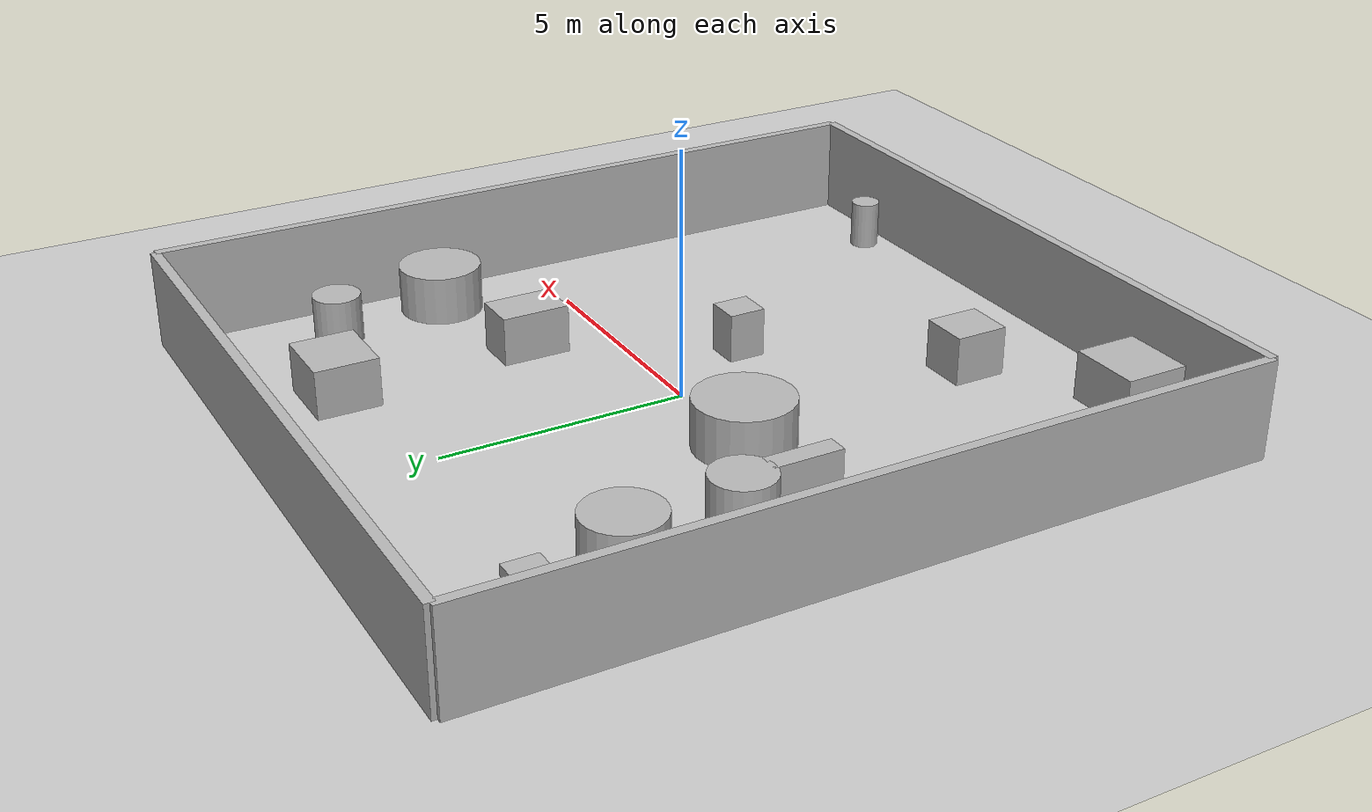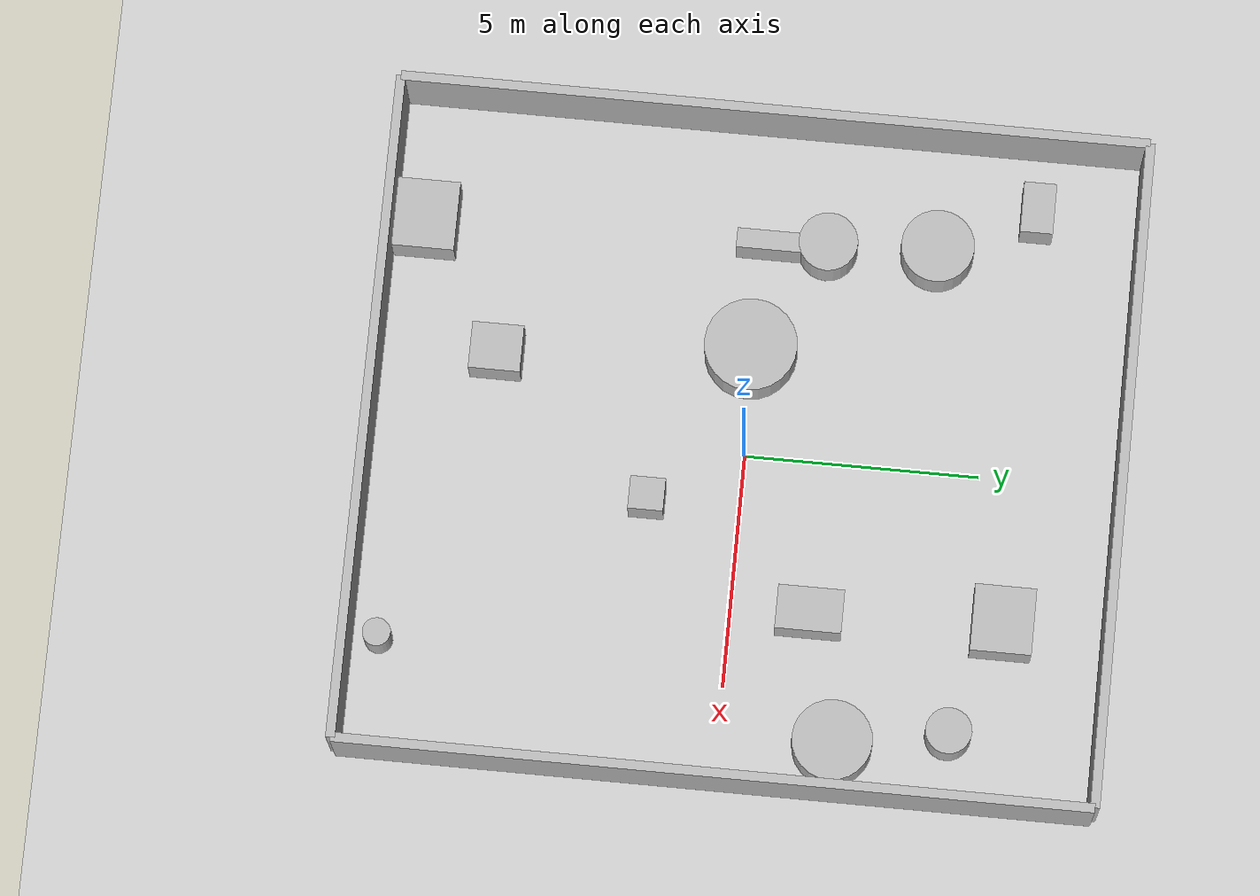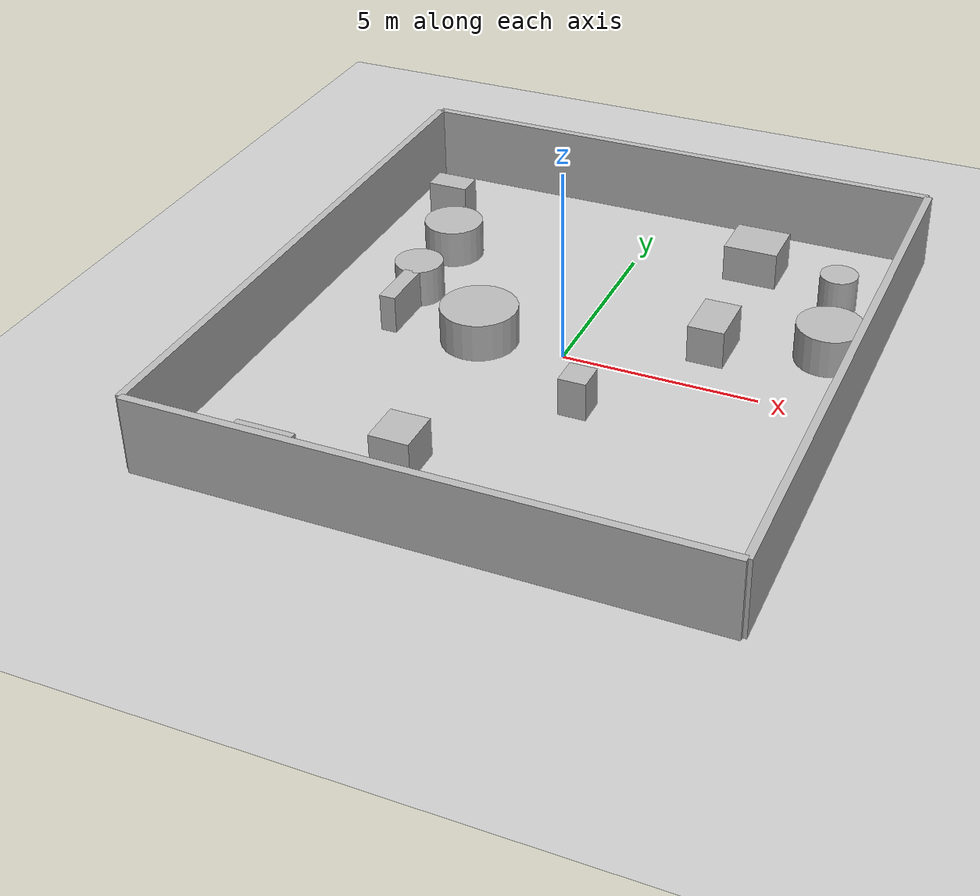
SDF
<?xml version="1.0"?>
<sdf version="1.6">
  <world name="env_44">

    <include><uri>model://ground_plane</uri></include>
    <include><uri>model://sun</uri></include>

    <!-- WALLS -->
    <model name="wall_north"><static>true</static><pose>0 7.962116765710313 1 0 0 0</pose>
      <link name="link"><collision name="collision">
        <geometry><box><size>14.20882183229628 0.2 2</size></box></geometry>
      </collision><visual name="visual">
        <geometry><box><size>14.20882183229628 0.2 2</size></box></geometry>
      </visual></link>
    </model>

    <model name="wall_south"><static>true</static><pose>0 -7.962116765710313 1 0 0 0</pose>
      <link name="link"><collision name="collision">
        <geometry><box><size>14.20882183229628 0.2 2</size></box></geometry>
      </collision><visual name="visual">
        <geometry><box><size>14.20882183229628 0.2 2</size></box></geometry>
      </visual></link>
    </model>

    <model name="wall_east"><static>true</static><pose>7.10441091614814 0 1 0 0 1.57</pose>
      <link name="link"><collision name="collision">
        <geometry><box><size>15.924233531420626 0.2 2</size></box></geometry>
      </collision><visual name="visual">
        <geometry><box><size>15.924233531420626 0.2 2</size></box></geometry>
      </visual></link>
    </model>

    <model name="wall_west"><static>true</static><pose>-7.10441091614814 0 1 0 0 1.57</pose>
      <link name="link"><collision name="collision">
        <geometry><box><size>15.924233531420626 0.2 2</size></box></geometry>
      </collision><visual name="visual">
        <geometry><box><size>15.924233531420626 0.2 2</size></box></geometry>
      </visual></link>
    </model>

    <!-- SENSOR -->

    <model name="lidar_sensor">
      <static>true</static>
      <pose>-2.1474866301509126 6.289193439963505 0.4 0 0 0</pose>
      <link name="link">
        <sensor name="lidar" type="ray">
          <pose>0 0 0 0 0 0</pose>
          <visualize>true</visualize>
          <always_on>true</always_on>
          <update_rate>10</update_rate>
          <ray>
            <scan><horizontal>
              <samples>120</samples>
              <resolution>1</resolution>
              <min_angle>-3.14159</min_angle>
              <max_angle>3.14159</max_angle>
            </horizontal></scan>
            <range><min>0.15</min><max>20.0</max><resolution>0.01</resolution></range>
          </ray>
          <plugin name="lidar_plugin" filename="liblidar_plugin.so"/>
        </sensor>
      </link>
    </model>

    <!-- OBSTACLES -->

    <model name="obstacle_0">
      <static>true</static>
      <pose>-4.587665013991376 1.3688313606810176 0.5 0 0 0</pose>
      <link name="link">
        <collision name="collision">
          <geometry><cylinder><radius>0.63</radius><length>1.0</length></cylinder></geometry>
        </collision>
        <visual name="visual">
          <geometry><cylinder><radius>0.63</radius><length>1.0</length></cylinder></geometry>
        </visual>
      </link>
    </model>

    <model name="obstacle_1">
      <static>true</static>
      <pose>4.6497179478608075 -7.309814955880909 0.5 0 0 0</pose>
      <link name="link">
        <collision name="collision">
          <geometry><cylinder><radius>0.3</radius><length>1.0</length></cylinder></geometry>
        </collision>
        <visual name="visual">
          <geometry><cylinder><radius>0.3</radius><length>1.0</length></cylinder></geometry>
        </visual>
      </link>
    </model>

    <model name="obstacle_2">
      <static>true</static>
      <pose>1.1799483110566982 -1.949694566356416 0.5 0 0 0</pose>
      <link name="link">
        <collision name="collision">
          <geometry><box><size>0.7 0.75 1.0</size></box></geometry>
        </collision>
        <visual name="visual">
          <geometry><box><size>0.7 0.75 1.0</size></box></geometry>
        </visual>
      </link>
    </model>

    <model name="obstacle_3">
      <static>true</static>
      <pose>-4.710843716873125 3.691843606122383 0.5 0 0 0</pose>
      <link name="link">
        <collision name="collision">
          <geometry><cylinder><radius>0.78</radius><length>1.0</length></cylinder></geometry>
        </collision>
        <visual name="visual">
          <geometry><cylinder><radius>0.78</radius><length>1.0</length></cylinder></geometry>
        </visual>
      </link>
    </model>

    <model name="obstacle_4">
      <static>true</static>
      <pose>5.616432425628091 4.823437931984435 0.5 0 0 0</pose>
      <link name="link">
        <collision name="collision">
          <geometry><cylinder><radius>0.49</radius><length>1.0</length></cylinder></geometry>
        </collision>
        <visual name="visual">
          <geometry><cylinder><radius>0.49</radius><length>1.0</length></cylinder></geometry>
        </visual>
      </link>
    </model>

    <model name="obstacle_5">
      <static>true</static>
      <pose>3.3167374261401505 1.692228567779674 0.5 0 0 0</pose>
      <link name="link">
        <collision name="collision">
          <geometry><box><size>0.93 1.4 1.0</size></box></geometry>
        </collision>
        <visual name="visual">
          <geometry><box><size>0.93 1.4 1.0</size></box></geometry>
        </visual>
      </link>
    </model>

    <model name="obstacle_6">
      <static>true</static>
      <pose>-4.4010126982299305 -7.201382602109697 0.5 0 0 0</pose>
      <link name="link">
        <collision name="collision">
          <geometry><box><size>1.48 1.34 1.0</size></box></geometry>
        </collision>
        <visual name="visual">
          <geometry><box><size>1.48 1.34 1.0</size></box></geometry>
        </visual>
      </link>
    </model>

    <model name="obstacle_7">
      <static>true</static>
      <pose>6.034300775760178 2.4123287224894554 0.5 0 0 0</pose>
      <link name="link">
        <collision name="collision">
          <geometry><cylinder><radius>0.85</radius><length>1.0</length></cylinder></geometry>
        </collision>
        <visual name="visual">
          <geometry><cylinder><radius>0.85</radius><length>1.0</length></cylinder></geometry>
        </visual>
      </link>
    </model>

    <model name="obstacle_8">
      <static>true</static>
      <pose>-5.73624369858083 5.746792831923688 0.5 0 0 0</pose>
      <link name="link">
        <collision name="collision">
          <geometry><box><size>1.09 0.69 1.0</size></box></geometry>
        </collision>
        <visual name="visual">
          <geometry><box><size>1.09 0.69 1.0</size></box></geometry>
        </visual>
      </link>
    </model>

    <model name="obstacle_9">
      <static>true</static>
      <pose>-4.505065324885216 0.12484674028894016 0.5 0 0 0</pose>
      <link name="link">
        <collision name="collision">
          <geometry><box><size>0.42 1.4 1.0</size></box></geometry>
        </collision>
        <visual name="visual">
          <geometry><box><size>0.42 1.4 1.0</size></box></geometry>
        </visual>
      </link>
    </model>

    <model name="obstacle_10">
      <static>true</static>
      <pose>-2.216578649093906 -0.06425950563905491 0.5 0 0 0</pose>
      <link name="link">
        <collision name="collision">
          <geometry><cylinder><radius>0.99</radius><length>1.0</length></cylinder></geometry>
        </collision>
        <visual name="visual">
          <geometry><cylinder><radius>0.99</radius><length>1.0</length></cylinder></geometry>
        </visual>
      </link>
    </model>

    <model name="obstacle_11">
      <static>true</static>
      <pose>-1.6676586894682135 -5.424601078425823 0.5 0 0 0</pose>
      <link name="link">
        <collision name="collision">
          <geometry><box><size>1.0 1.1 1.0</size></box></geometry>
        </collision>
        <visual name="visual">
          <geometry><box><size>1.0 1.1 1.0</size></box></geometry>
        </visual>
      </link>
    </model>

    <model name="obstacle_12">
      <static>true</static>
      <pose>3.1622940669609285 5.759554919873759 0.5 0 0 0</pose>
      <link name="link">
        <collision name="collision">
          <geometry><box><size>1.42 1.29 1.0</size></box></geometry>
        </collision>
        <visual name="visual">
          <geometry><box><size>1.42 1.29 1.0</size></box></geometry>
        </visual>
      </link>
    </model>

  </world>
</sdf>
